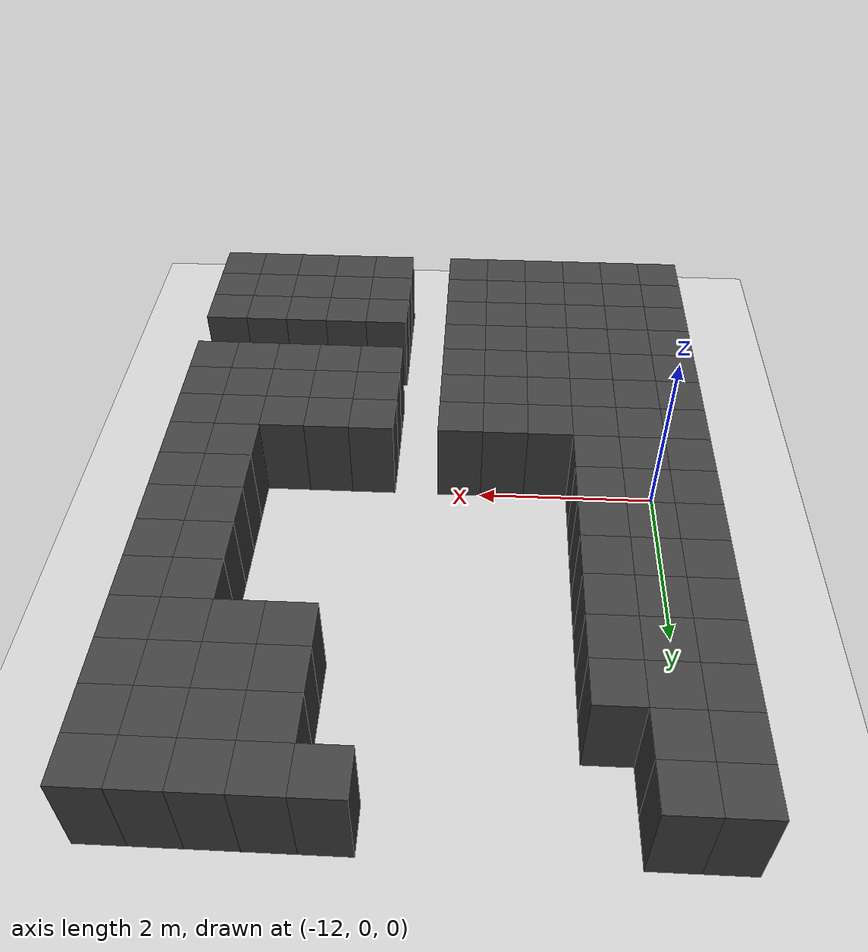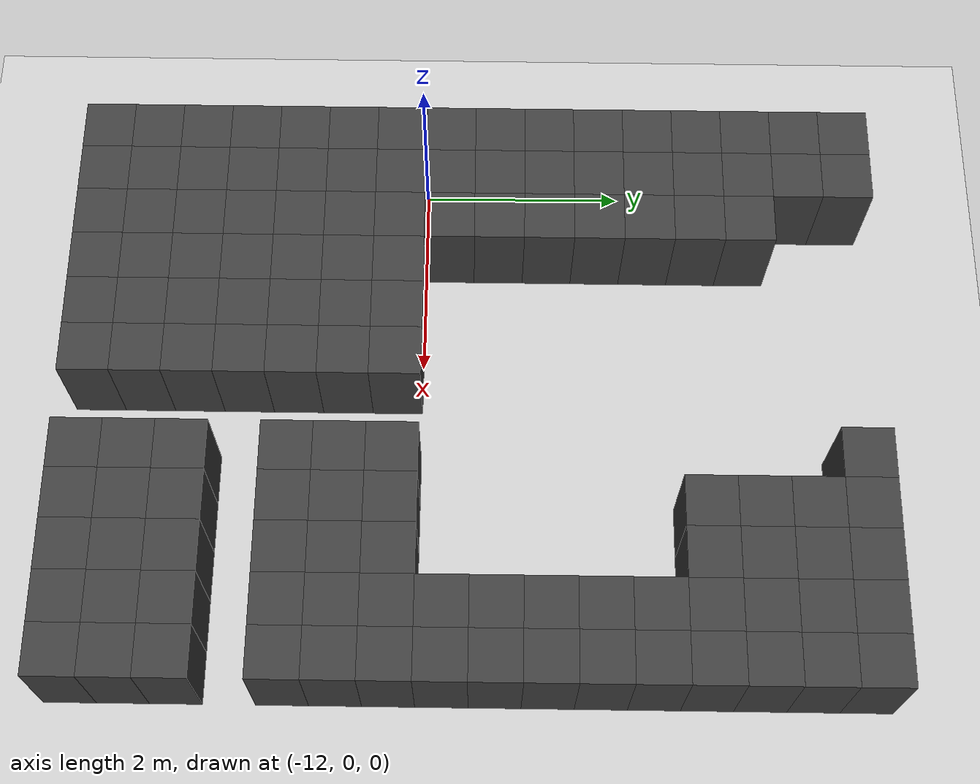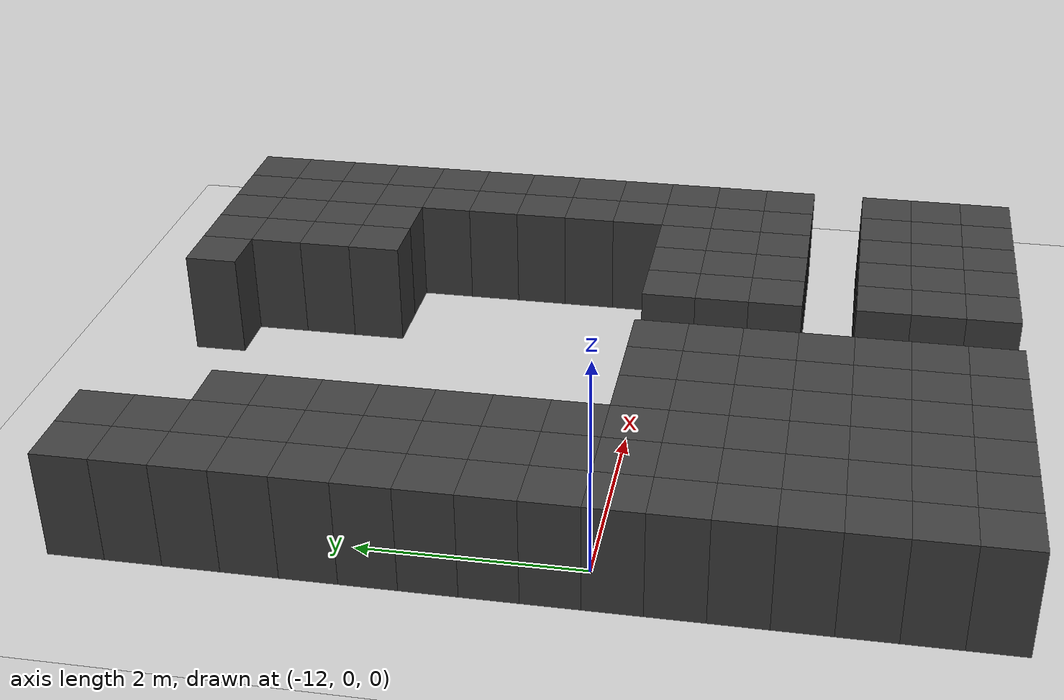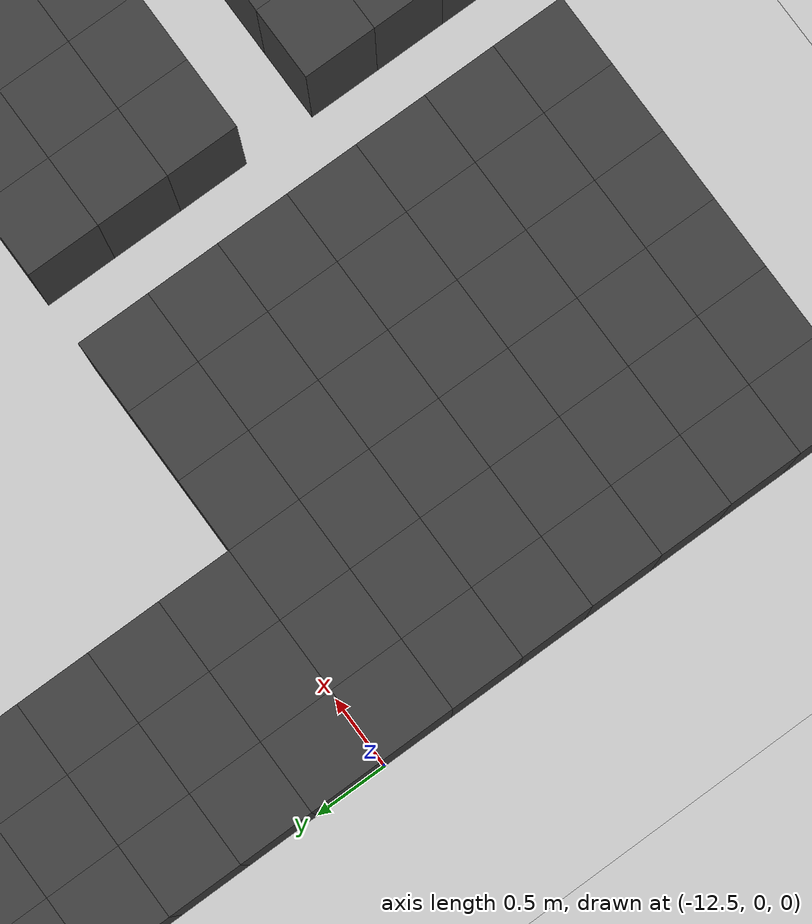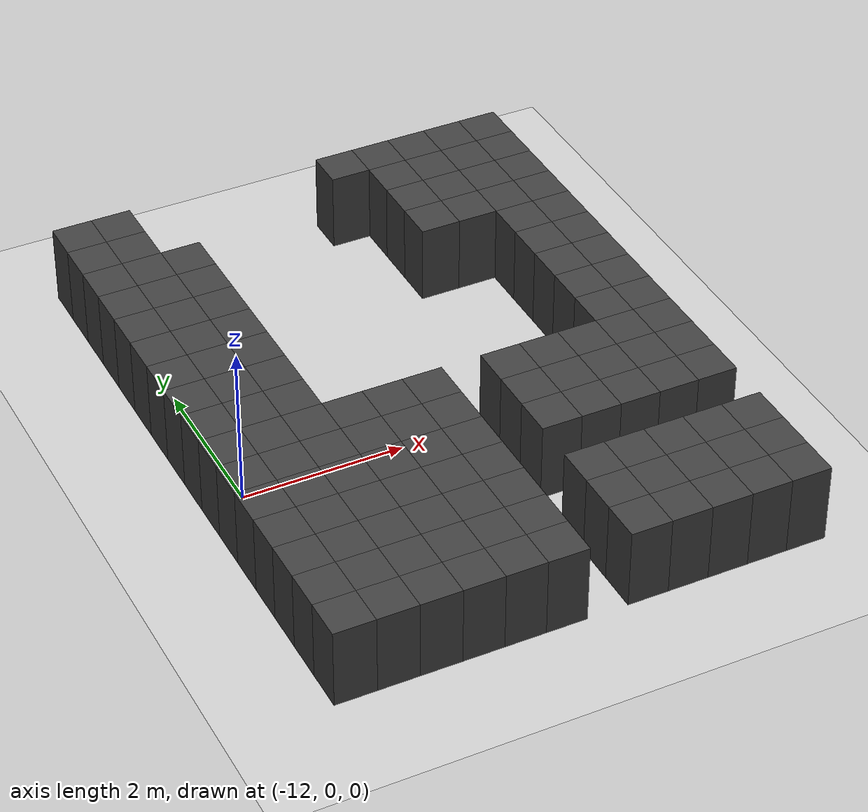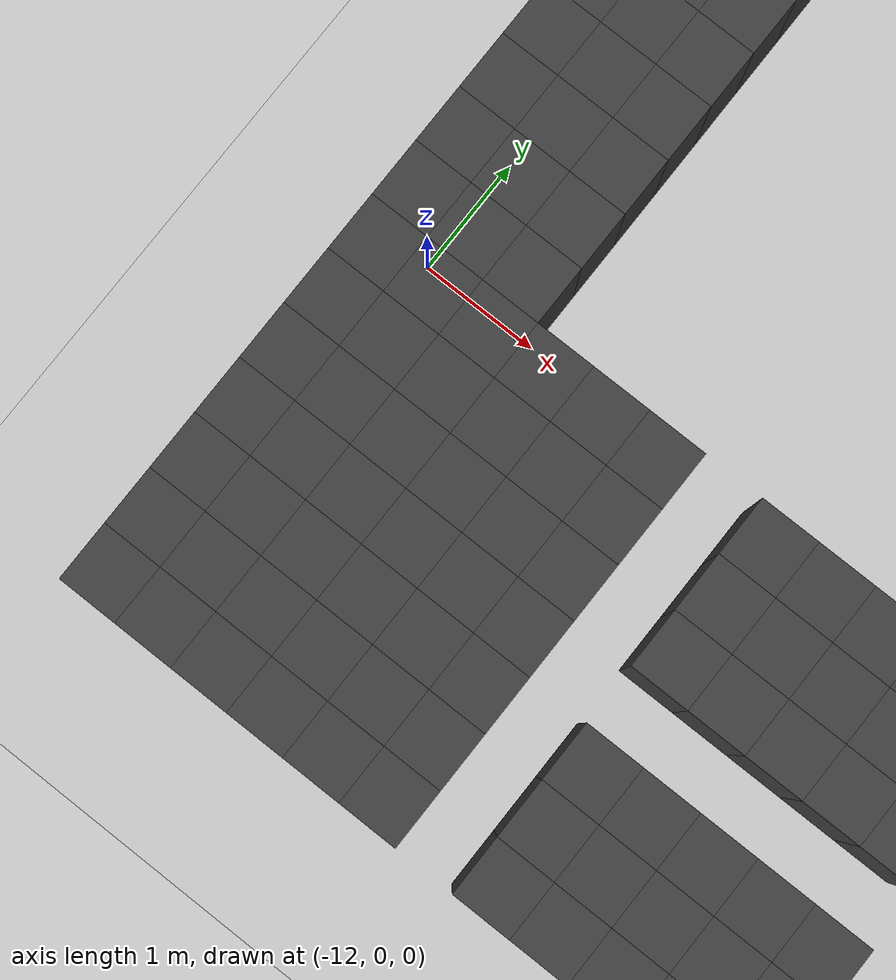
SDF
<sdf version="1.7">
 <world name="map_13820">
  <model name="ground_plane">
   <static>true</static>
   <link name="link">
    <collision name="collision">
     <geometry><plane><normal>0 0 1</normal><size>200 200</size></plane></geometry>
    </collision>
    <visual name="visual">
     <geometry><plane><normal>0 0 1</normal><size>200 200</size></plane></geometry>
     <material><ambient>0.8 0.8 0.8 1</ambient><diffuse>0.8 0.8 0.8 1</diffuse></material>
    </visual>
   </link>
  </model>
  <model name="maze_environment">
   <static>true</static>
   <link name="wall_519">
    <pose>-12.250 4.250 0.500 0 0 0</pose>
    <collision name="col"><geometry><box><size>0.5 0.5 1.0</size></box></geometry></collision>
    <visual name="vis">
     <geometry><box><size>0.5 0.5 1.0</size></box></geometry>
     <material><ambient>0.15 0.15 0.15 1</ambient><diffuse>0.25 0.25 0.25 1</diffuse></material>
    </visual>
   </link>
   <link name="wall_520">
    <pose>-11.750 4.250 0.500 0 0 0</pose>
    <collision name="col"><geometry><box><size>0.5 0.5 1.0</size></box></geometry></collision>
    <visual name="vis">
     <geometry><box><size>0.5 0.5 1.0</size></box></geometry>
     <material><ambient>0.15 0.15 0.15 1</ambient><diffuse>0.25 0.25 0.25 1</diffuse></material>
    </visual>
   </link>
   <link name="wall_521">
    <pose>-8.750 4.250 0.500 0 0 0</pose>
    <collision name="col"><geometry><box><size>0.5 0.5 1.0</size></box></geometry></collision>
    <visual name="vis">
     <geometry><box><size>0.5 0.5 1.0</size></box></geometry>
     <material><ambient>0.15 0.15 0.15 1</ambient><diffuse>0.25 0.25 0.25 1</diffuse></material>
    </visual>
   </link>
   <link name="wall_522">
    <pose>-8.250 4.250 0.500 0 0 0</pose>
    <collision name="col"><geometry><box><size>0.5 0.5 1.0</size></box></geometry></collision>
    <visual name="vis">
     <geometry><box><size>0.5 0.5 1.0</size></box></geometry>
     <material><ambient>0.15 0.15 0.15 1</ambient><diffuse>0.25 0.25 0.25 1</diffuse></material>
    </visual>
   </link>
   <link name="wall_523">
    <pose>-7.750 4.250 0.500 0 0 0</pose>
    <collision name="col"><geometry><box><size>0.5 0.5 1.0</size></box></geometry></collision>
    <visual name="vis">
     <geometry><box><size>0.5 0.5 1.0</size></box></geometry>
     <material><ambient>0.15 0.15 0.15 1</ambient><diffuse>0.25 0.25 0.25 1</diffuse></material>
    </visual>
   </link>
   <link name="wall_524">
    <pose>-7.250 4.250 0.500 0 0 0</pose>
    <collision name="col"><geometry><box><size>0.5 0.5 1.0</size></box></geometry></collision>
    <visual name="vis">
     <geometry><box><size>0.5 0.5 1.0</size></box></geometry>
     <material><ambient>0.15 0.15 0.15 1</ambient><diffuse>0.25 0.25 0.25 1</diffuse></material>
    </visual>
   </link>
   <link name="wall_525">
    <pose>-6.750 4.250 0.500 0 0 0</pose>
    <collision name="col"><geometry><box><size>0.5 0.5 1.0</size></box></geometry></collision>
    <visual name="vis">
     <geometry><box><size>0.5 0.5 1.0</size></box></geometry>
     <material><ambient>0.15 0.15 0.15 1</ambient><diffuse>0.25 0.25 0.25 1</diffuse></material>
    </visual>
   </link>
   <link name="wall_553">
    <pose>-12.250 3.750 0.500 0 0 0</pose>
    <collision name="col"><geometry><box><size>0.5 0.5 1.0</size></box></geometry></collision>
    <visual name="vis">
     <geometry><box><size>0.5 0.5 1.0</size></box></geometry>
     <material><ambient>0.15 0.15 0.15 1</ambient><diffuse>0.25 0.25 0.25 1</diffuse></material>
    </visual>
   </link>
   <link name="wall_554">
    <pose>-11.750 3.750 0.500 0 0 0</pose>
    <collision name="col"><geometry><box><size>0.5 0.5 1.0</size></box></geometry></collision>
    <visual name="vis">
     <geometry><box><size>0.5 0.5 1.0</size></box></geometry>
     <material><ambient>0.15 0.15 0.15 1</ambient><diffuse>0.25 0.25 0.25 1</diffuse></material>
    </visual>
   </link>
   <link name="wall_555">
    <pose>-8.250 3.750 0.500 0 0 0</pose>
    <collision name="col"><geometry><box><size>0.5 0.5 1.0</size></box></geometry></collision>
    <visual name="vis">
     <geometry><box><size>0.5 0.5 1.0</size></box></geometry>
     <material><ambient>0.15 0.15 0.15 1</ambient><diffuse>0.25 0.25 0.25 1</diffuse></material>
    </visual>
   </link>
   <link name="wall_556">
    <pose>-7.750 3.750 0.500 0 0 0</pose>
    <collision name="col"><geometry><box><size>0.5 0.5 1.0</size></box></geometry></collision>
    <visual name="vis">
     <geometry><box><size>0.5 0.5 1.0</size></box></geometry>
     <material><ambient>0.15 0.15 0.15 1</ambient><diffuse>0.25 0.25 0.25 1</diffuse></material>
    </visual>
   </link>
   <link name="wall_557">
    <pose>-7.250 3.750 0.500 0 0 0</pose>
    <collision name="col"><geometry><box><size>0.5 0.5 1.0</size></box></geometry></collision>
    <visual name="vis">
     <geometry><box><size>0.5 0.5 1.0</size></box></geometry>
     <material><ambient>0.15 0.15 0.15 1</ambient><diffuse>0.25 0.25 0.25 1</diffuse></material>
    </visual>
   </link>
   <link name="wall_558">
    <pose>-6.750 3.750 0.500 0 0 0</pose>
    <collision name="col"><geometry><box><size>0.5 0.5 1.0</size></box></geometry></collision>
    <visual name="vis">
     <geometry><box><size>0.5 0.5 1.0</size></box></geometry>
     <material><ambient>0.15 0.15 0.15 1</ambient><diffuse>0.25 0.25 0.25 1</diffuse></material>
    </visual>
   </link>
   <link name="wall_589">
    <pose>-12.250 3.250 0.500 0 0 0</pose>
    <collision name="col"><geometry><box><size>0.5 0.5 1.0</size></box></geometry></collision>
    <visual name="vis">
     <geometry><box><size>0.5 0.5 1.0</size></box></geometry>
     <material><ambient>0.15 0.15 0.15 1</ambient><diffuse>0.25 0.25 0.25 1</diffuse></material>
    </visual>
   </link>
   <link name="wall_590">
    <pose>-11.750 3.250 0.500 0 0 0</pose>
    <collision name="col"><geometry><box><size>0.5 0.5 1.0</size></box></geometry></collision>
    <visual name="vis">
     <geometry><box><size>0.5 0.5 1.0</size></box></geometry>
     <material><ambient>0.15 0.15 0.15 1</ambient><diffuse>0.25 0.25 0.25 1</diffuse></material>
    </visual>
   </link>
   <link name="wall_591">
    <pose>-11.250 3.250 0.500 0 0 0</pose>
    <collision name="col"><geometry><box><size>0.5 0.5 1.0</size></box></geometry></collision>
    <visual name="vis">
     <geometry><box><size>0.5 0.5 1.0</size></box></geometry>
     <material><ambient>0.15 0.15 0.15 1</ambient><diffuse>0.25 0.25 0.25 1</diffuse></material>
    </visual>
   </link>
   <link name="wall_592">
    <pose>-8.250 3.250 0.500 0 0 0</pose>
    <collision name="col"><geometry><box><size>0.5 0.5 1.0</size></box></geometry></collision>
    <visual name="vis">
     <geometry><box><size>0.5 0.5 1.0</size></box></geometry>
     <material><ambient>0.15 0.15 0.15 1</ambient><diffuse>0.25 0.25 0.25 1</diffuse></material>
    </visual>
   </link>
   <link name="wall_593">
    <pose>-7.750 3.250 0.500 0 0 0</pose>
    <collision name="col"><geometry><box><size>0.5 0.5 1.0</size></box></geometry></collision>
    <visual name="vis">
     <geometry><box><size>0.5 0.5 1.0</size></box></geometry>
     <material><ambient>0.15 0.15 0.15 1</ambient><diffuse>0.25 0.25 0.25 1</diffuse></material>
    </visual>
   </link>
   <link name="wall_594">
    <pose>-7.250 3.250 0.500 0 0 0</pose>
    <collision name="col"><geometry><box><size>0.5 0.5 1.0</size></box></geometry></collision>
    <visual name="vis">
     <geometry><box><size>0.5 0.5 1.0</size></box></geometry>
     <material><ambient>0.15 0.15 0.15 1</ambient><diffuse>0.25 0.25 0.25 1</diffuse></material>
    </visual>
   </link>
   <link name="wall_595">
    <pose>-6.750 3.250 0.500 0 0 0</pose>
    <collision name="col"><geometry><box><size>0.5 0.5 1.0</size></box></geometry></collision>
    <visual name="vis">
     <geometry><box><size>0.5 0.5 1.0</size></box></geometry>
     <material><ambient>0.15 0.15 0.15 1</ambient><diffuse>0.25 0.25 0.25 1</diffuse></material>
    </visual>
   </link>
   <link name="wall_626">
    <pose>-12.250 2.750 0.500 0 0 0</pose>
    <collision name="col"><geometry><box><size>0.5 0.5 1.0</size></box></geometry></collision>
    <visual name="vis">
     <geometry><box><size>0.5 0.5 1.0</size></box></geometry>
     <material><ambient>0.15 0.15 0.15 1</ambient><diffuse>0.25 0.25 0.25 1</diffuse></material>
    </visual>
   </link>
   <link name="wall_627">
    <pose>-11.750 2.750 0.500 0 0 0</pose>
    <collision name="col"><geometry><box><size>0.5 0.5 1.0</size></box></geometry></collision>
    <visual name="vis">
     <geometry><box><size>0.5 0.5 1.0</size></box></geometry>
     <material><ambient>0.15 0.15 0.15 1</ambient><diffuse>0.25 0.25 0.25 1</diffuse></material>
    </visual>
   </link>
   <link name="wall_628">
    <pose>-11.250 2.750 0.500 0 0 0</pose>
    <collision name="col"><geometry><box><size>0.5 0.5 1.0</size></box></geometry></collision>
    <visual name="vis">
     <geometry><box><size>0.5 0.5 1.0</size></box></geometry>
     <material><ambient>0.15 0.15 0.15 1</ambient><diffuse>0.25 0.25 0.25 1</diffuse></material>
    </visual>
   </link>
   <link name="wall_629">
    <pose>-8.250 2.750 0.500 0 0 0</pose>
    <collision name="col"><geometry><box><size>0.5 0.5 1.0</size></box></geometry></collision>
    <visual name="vis">
     <geometry><box><size>0.5 0.5 1.0</size></box></geometry>
     <material><ambient>0.15 0.15 0.15 1</ambient><diffuse>0.25 0.25 0.25 1</diffuse></material>
    </visual>
   </link>
   <link name="wall_630">
    <pose>-7.750 2.750 0.500 0 0 0</pose>
    <collision name="col"><geometry><box><size>0.5 0.5 1.0</size></box></geometry></collision>
    <visual name="vis">
     <geometry><box><size>0.5 0.5 1.0</size></box></geometry>
     <material><ambient>0.15 0.15 0.15 1</ambient><diffuse>0.25 0.25 0.25 1</diffuse></material>
    </visual>
   </link>
   <link name="wall_631">
    <pose>-7.250 2.750 0.500 0 0 0</pose>
    <collision name="col"><geometry><box><size>0.5 0.5 1.0</size></box></geometry></collision>
    <visual name="vis">
     <geometry><box><size>0.5 0.5 1.0</size></box></geometry>
     <material><ambient>0.15 0.15 0.15 1</ambient><diffuse>0.25 0.25 0.25 1</diffuse></material>
    </visual>
   </link>
   <link name="wall_632">
    <pose>-6.750 2.750 0.500 0 0 0</pose>
    <collision name="col"><geometry><box><size>0.5 0.5 1.0</size></box></geometry></collision>
    <visual name="vis">
     <geometry><box><size>0.5 0.5 1.0</size></box></geometry>
     <material><ambient>0.15 0.15 0.15 1</ambient><diffuse>0.25 0.25 0.25 1</diffuse></material>
    </visual>
   </link>
   <link name="wall_670">
    <pose>-12.250 2.250 0.500 0 0 0</pose>
    <collision name="col"><geometry><box><size>0.5 0.5 1.0</size></box></geometry></collision>
    <visual name="vis">
     <geometry><box><size>0.5 0.5 1.0</size></box></geometry>
     <material><ambient>0.15 0.15 0.15 1</ambient><diffuse>0.25 0.25 0.25 1</diffuse></material>
    </visual>
   </link>
   <link name="wall_671">
    <pose>-11.750 2.250 0.500 0 0 0</pose>
    <collision name="col"><geometry><box><size>0.5 0.5 1.0</size></box></geometry></collision>
    <visual name="vis">
     <geometry><box><size>0.5 0.5 1.0</size></box></geometry>
     <material><ambient>0.15 0.15 0.15 1</ambient><diffuse>0.25 0.25 0.25 1</diffuse></material>
    </visual>
   </link>
   <link name="wall_672">
    <pose>-11.250 2.250 0.500 0 0 0</pose>
    <collision name="col"><geometry><box><size>0.5 0.5 1.0</size></box></geometry></collision>
    <visual name="vis">
     <geometry><box><size>0.5 0.5 1.0</size></box></geometry>
     <material><ambient>0.15 0.15 0.15 1</ambient><diffuse>0.25 0.25 0.25 1</diffuse></material>
    </visual>
   </link>
   <link name="wall_673">
    <pose>-7.250 2.250 0.500 0 0 0</pose>
    <collision name="col"><geometry><box><size>0.5 0.5 1.0</size></box></geometry></collision>
    <visual name="vis">
     <geometry><box><size>0.5 0.5 1.0</size></box></geometry>
     <material><ambient>0.15 0.15 0.15 1</ambient><diffuse>0.25 0.25 0.25 1</diffuse></material>
    </visual>
   </link>
   <link name="wall_674">
    <pose>-6.750 2.250 0.500 0 0 0</pose>
    <collision name="col"><geometry><box><size>0.5 0.5 1.0</size></box></geometry></collision>
    <visual name="vis">
     <geometry><box><size>0.5 0.5 1.0</size></box></geometry>
     <material><ambient>0.15 0.15 0.15 1</ambient><diffuse>0.25 0.25 0.25 1</diffuse></material>
    </visual>
   </link>
   <link name="wall_712">
    <pose>-12.250 1.750 0.500 0 0 0</pose>
    <collision name="col"><geometry><box><size>0.5 0.5 1.0</size></box></geometry></collision>
    <visual name="vis">
     <geometry><box><size>0.5 0.5 1.0</size></box></geometry>
     <material><ambient>0.15 0.15 0.15 1</ambient><diffuse>0.25 0.25 0.25 1</diffuse></material>
    </visual>
   </link>
   <link name="wall_713">
    <pose>-11.750 1.750 0.500 0 0 0</pose>
    <collision name="col"><geometry><box><size>0.5 0.5 1.0</size></box></geometry></collision>
    <visual name="vis">
     <geometry><box><size>0.5 0.5 1.0</size></box></geometry>
     <material><ambient>0.15 0.15 0.15 1</ambient><diffuse>0.25 0.25 0.25 1</diffuse></material>
    </visual>
   </link>
   <link name="wall_714">
    <pose>-11.250 1.750 0.500 0 0 0</pose>
    <collision name="col"><geometry><box><size>0.5 0.5 1.0</size></box></geometry></collision>
    <visual name="vis">
     <geometry><box><size>0.5 0.5 1.0</size></box></geometry>
     <material><ambient>0.15 0.15 0.15 1</ambient><diffuse>0.25 0.25 0.25 1</diffuse></material>
    </visual>
   </link>
   <link name="wall_715">
    <pose>-7.250 1.750 0.500 0 0 0</pose>
    <collision name="col"><geometry><box><size>0.5 0.5 1.0</size></box></geometry></collision>
    <visual name="vis">
     <geometry><box><size>0.5 0.5 1.0</size></box></geometry>
     <material><ambient>0.15 0.15 0.15 1</ambient><diffuse>0.25 0.25 0.25 1</diffuse></material>
    </visual>
   </link>
   <link name="wall_716">
    <pose>-6.750 1.750 0.500 0 0 0</pose>
    <collision name="col"><geometry><box><size>0.5 0.5 1.0</size></box></geometry></collision>
    <visual name="vis">
     <geometry><box><size>0.5 0.5 1.0</size></box></geometry>
     <material><ambient>0.15 0.15 0.15 1</ambient><diffuse>0.25 0.25 0.25 1</diffuse></material>
    </visual>
   </link>
   <link name="wall_754">
    <pose>-12.250 1.250 0.500 0 0 0</pose>
    <collision name="col"><geometry><box><size>0.5 0.5 1.0</size></box></geometry></collision>
    <visual name="vis">
     <geometry><box><size>0.5 0.5 1.0</size></box></geometry>
     <material><ambient>0.15 0.15 0.15 1</ambient><diffuse>0.25 0.25 0.25 1</diffuse></material>
    </visual>
   </link>
   <link name="wall_755">
    <pose>-11.750 1.250 0.500 0 0 0</pose>
    <collision name="col"><geometry><box><size>0.5 0.5 1.0</size></box></geometry></collision>
    <visual name="vis">
     <geometry><box><size>0.5 0.5 1.0</size></box></geometry>
     <material><ambient>0.15 0.15 0.15 1</ambient><diffuse>0.25 0.25 0.25 1</diffuse></material>
    </visual>
   </link>
   <link name="wall_756">
    <pose>-11.250 1.250 0.500 0 0 0</pose>
    <collision name="col"><geometry><box><size>0.5 0.5 1.0</size></box></geometry></collision>
    <visual name="vis">
     <geometry><box><size>0.5 0.5 1.0</size></box></geometry>
     <material><ambient>0.15 0.15 0.15 1</ambient><diffuse>0.25 0.25 0.25 1</diffuse></material>
    </visual>
   </link>
   <link name="wall_757">
    <pose>-7.250 1.250 0.500 0 0 0</pose>
    <collision name="col"><geometry><box><size>0.5 0.5 1.0</size></box></geometry></collision>
    <visual name="vis">
     <geometry><box><size>0.5 0.5 1.0</size></box></geometry>
     <material><ambient>0.15 0.15 0.15 1</ambient><diffuse>0.25 0.25 0.25 1</diffuse></material>
    </visual>
   </link>
   <link name="wall_758">
    <pose>-6.750 1.250 0.500 0 0 0</pose>
    <collision name="col"><geometry><box><size>0.5 0.5 1.0</size></box></geometry></collision>
    <visual name="vis">
     <geometry><box><size>0.5 0.5 1.0</size></box></geometry>
     <material><ambient>0.15 0.15 0.15 1</ambient><diffuse>0.25 0.25 0.25 1</diffuse></material>
    </visual>
   </link>
   <link name="wall_796">
    <pose>-12.250 0.750 0.500 0 0 0</pose>
    <collision name="col"><geometry><box><size>0.5 0.5 1.0</size></box></geometry></collision>
    <visual name="vis">
     <geometry><box><size>0.5 0.5 1.0</size></box></geometry>
     <material><ambient>0.15 0.15 0.15 1</ambient><diffuse>0.25 0.25 0.25 1</diffuse></material>
    </visual>
   </link>
   <link name="wall_797">
    <pose>-11.750 0.750 0.500 0 0 0</pose>
    <collision name="col"><geometry><box><size>0.5 0.5 1.0</size></box></geometry></collision>
    <visual name="vis">
     <geometry><box><size>0.5 0.5 1.0</size></box></geometry>
     <material><ambient>0.15 0.15 0.15 1</ambient><diffuse>0.25 0.25 0.25 1</diffuse></material>
    </visual>
   </link>
   <link name="wall_798">
    <pose>-11.250 0.750 0.500 0 0 0</pose>
    <collision name="col"><geometry><box><size>0.5 0.5 1.0</size></box></geometry></collision>
    <visual name="vis">
     <geometry><box><size>0.5 0.5 1.0</size></box></geometry>
     <material><ambient>0.15 0.15 0.15 1</ambient><diffuse>0.25 0.25 0.25 1</diffuse></material>
    </visual>
   </link>
   <link name="wall_799">
    <pose>-7.250 0.750 0.500 0 0 0</pose>
    <collision name="col"><geometry><box><size>0.5 0.5 1.0</size></box></geometry></collision>
    <visual name="vis">
     <geometry><box><size>0.5 0.5 1.0</size></box></geometry>
     <material><ambient>0.15 0.15 0.15 1</ambient><diffuse>0.25 0.25 0.25 1</diffuse></material>
    </visual>
   </link>
   <link name="wall_800">
    <pose>-6.750 0.750 0.500 0 0 0</pose>
    <collision name="col"><geometry><box><size>0.5 0.5 1.0</size></box></geometry></collision>
    <visual name="vis">
     <geometry><box><size>0.5 0.5 1.0</size></box></geometry>
     <material><ambient>0.15 0.15 0.15 1</ambient><diffuse>0.25 0.25 0.25 1</diffuse></material>
    </visual>
   </link>
   <link name="wall_838">
    <pose>-12.250 0.250 0.500 0 0 0</pose>
    <collision name="col"><geometry><box><size>0.5 0.5 1.0</size></box></geometry></collision>
    <visual name="vis">
     <geometry><box><size>0.5 0.5 1.0</size></box></geometry>
     <material><ambient>0.15 0.15 0.15 1</ambient><diffuse>0.25 0.25 0.25 1</diffuse></material>
    </visual>
   </link>
   <link name="wall_839">
    <pose>-11.750 0.250 0.500 0 0 0</pose>
    <collision name="col"><geometry><box><size>0.5 0.5 1.0</size></box></geometry></collision>
    <visual name="vis">
     <geometry><box><size>0.5 0.5 1.0</size></box></geometry>
     <material><ambient>0.15 0.15 0.15 1</ambient><diffuse>0.25 0.25 0.25 1</diffuse></material>
    </visual>
   </link>
   <link name="wall_840">
    <pose>-11.250 0.250 0.500 0 0 0</pose>
    <collision name="col"><geometry><box><size>0.5 0.5 1.0</size></box></geometry></collision>
    <visual name="vis">
     <geometry><box><size>0.5 0.5 1.0</size></box></geometry>
     <material><ambient>0.15 0.15 0.15 1</ambient><diffuse>0.25 0.25 0.25 1</diffuse></material>
    </visual>
   </link>
   <link name="wall_841">
    <pose>-7.250 0.250 0.500 0 0 0</pose>
    <collision name="col"><geometry><box><size>0.5 0.5 1.0</size></box></geometry></collision>
    <visual name="vis">
     <geometry><box><size>0.5 0.5 1.0</size></box></geometry>
     <material><ambient>0.15 0.15 0.15 1</ambient><diffuse>0.25 0.25 0.25 1</diffuse></material>
    </visual>
   </link>
   <link name="wall_842">
    <pose>-6.750 0.250 0.500 0 0 0</pose>
    <collision name="col"><geometry><box><size>0.5 0.5 1.0</size></box></geometry></collision>
    <visual name="vis">
     <geometry><box><size>0.5 0.5 1.0</size></box></geometry>
     <material><ambient>0.15 0.15 0.15 1</ambient><diffuse>0.25 0.25 0.25 1</diffuse></material>
    </visual>
   </link>
   <link name="wall_880">
    <pose>-12.250 -0.250 0.500 0 0 0</pose>
    <collision name="col"><geometry><box><size>0.5 0.5 1.0</size></box></geometry></collision>
    <visual name="vis">
     <geometry><box><size>0.5 0.5 1.0</size></box></geometry>
     <material><ambient>0.15 0.15 0.15 1</ambient><diffuse>0.25 0.25 0.25 1</diffuse></material>
    </visual>
   </link>
   <link name="wall_881">
    <pose>-11.750 -0.250 0.500 0 0 0</pose>
    <collision name="col"><geometry><box><size>0.5 0.5 1.0</size></box></geometry></collision>
    <visual name="vis">
     <geometry><box><size>0.5 0.5 1.0</size></box></geometry>
     <material><ambient>0.15 0.15 0.15 1</ambient><diffuse>0.25 0.25 0.25 1</diffuse></material>
    </visual>
   </link>
   <link name="wall_882">
    <pose>-11.250 -0.250 0.500 0 0 0</pose>
    <collision name="col"><geometry><box><size>0.5 0.5 1.0</size></box></geometry></collision>
    <visual name="vis">
     <geometry><box><size>0.5 0.5 1.0</size></box></geometry>
     <material><ambient>0.15 0.15 0.15 1</ambient><diffuse>0.25 0.25 0.25 1</diffuse></material>
    </visual>
   </link>
   <link name="wall_883">
    <pose>-10.750 -0.250 0.500 0 0 0</pose>
    <collision name="col"><geometry><box><size>0.5 0.5 1.0</size></box></geometry></collision>
    <visual name="vis">
     <geometry><box><size>0.5 0.5 1.0</size></box></geometry>
     <material><ambient>0.15 0.15 0.15 1</ambient><diffuse>0.25 0.25 0.25 1</diffuse></material>
    </visual>
   </link>
   <link name="wall_884">
    <pose>-10.250 -0.250 0.500 0 0 0</pose>
    <collision name="col"><geometry><box><size>0.5 0.5 1.0</size></box></geometry></collision>
    <visual name="vis">
     <geometry><box><size>0.5 0.5 1.0</size></box></geometry>
     <material><ambient>0.15 0.15 0.15 1</ambient><diffuse>0.25 0.25 0.25 1</diffuse></material>
    </visual>
   </link>
   <link name="wall_885">
    <pose>-9.750 -0.250 0.500 0 0 0</pose>
    <collision name="col"><geometry><box><size>0.5 0.5 1.0</size></box></geometry></collision>
    <visual name="vis">
     <geometry><box><size>0.5 0.5 1.0</size></box></geometry>
     <material><ambient>0.15 0.15 0.15 1</ambient><diffuse>0.25 0.25 0.25 1</diffuse></material>
    </visual>
   </link>
   <link name="wall_886">
    <pose>-8.750 -0.250 0.500 0 0 0</pose>
    <collision name="col"><geometry><box><size>0.5 0.5 1.0</size></box></geometry></collision>
    <visual name="vis">
     <geometry><box><size>0.5 0.5 1.0</size></box></geometry>
     <material><ambient>0.15 0.15 0.15 1</ambient><diffuse>0.25 0.25 0.25 1</diffuse></material>
    </visual>
   </link>
   <link name="wall_887">
    <pose>-8.250 -0.250 0.500 0 0 0</pose>
    <collision name="col"><geometry><box><size>0.5 0.5 1.0</size></box></geometry></collision>
    <visual name="vis">
     <geometry><box><size>0.5 0.5 1.0</size></box></geometry>
     <material><ambient>0.15 0.15 0.15 1</ambient><diffuse>0.25 0.25 0.25 1</diffuse></material>
    </visual>
   </link>
   <link name="wall_888">
    <pose>-7.750 -0.250 0.500 0 0 0</pose>
    <collision name="col"><geometry><box><size>0.5 0.5 1.0</size></box></geometry></collision>
    <visual name="vis">
     <geometry><box><size>0.5 0.5 1.0</size></box></geometry>
     <material><ambient>0.15 0.15 0.15 1</ambient><diffuse>0.25 0.25 0.25 1</diffuse></material>
    </visual>
   </link>
   <link name="wall_889">
    <pose>-7.250 -0.250 0.500 0 0 0</pose>
    <collision name="col"><geometry><box><size>0.5 0.5 1.0</size></box></geometry></collision>
    <visual name="vis">
     <geometry><box><size>0.5 0.5 1.0</size></box></geometry>
     <material><ambient>0.15 0.15 0.15 1</ambient><diffuse>0.25 0.25 0.25 1</diffuse></material>
    </visual>
   </link>
   <link name="wall_890">
    <pose>-6.750 -0.250 0.500 0 0 0</pose>
    <collision name="col"><geometry><box><size>0.5 0.5 1.0</size></box></geometry></collision>
    <visual name="vis">
     <geometry><box><size>0.5 0.5 1.0</size></box></geometry>
     <material><ambient>0.15 0.15 0.15 1</ambient><diffuse>0.25 0.25 0.25 1</diffuse></material>
    </visual>
   </link>
   <link name="wall_920">
    <pose>-12.250 -0.750 0.500 0 0 0</pose>
    <collision name="col"><geometry><box><size>0.5 0.5 1.0</size></box></geometry></collision>
    <visual name="vis">
     <geometry><box><size>0.5 0.5 1.0</size></box></geometry>
     <material><ambient>0.15 0.15 0.15 1</ambient><diffuse>0.25 0.25 0.25 1</diffuse></material>
    </visual>
   </link>
   <link name="wall_921">
    <pose>-11.750 -0.750 0.500 0 0 0</pose>
    <collision name="col"><geometry><box><size>0.5 0.5 1.0</size></box></geometry></collision>
    <visual name="vis">
     <geometry><box><size>0.5 0.5 1.0</size></box></geometry>
     <material><ambient>0.15 0.15 0.15 1</ambient><diffuse>0.25 0.25 0.25 1</diffuse></material>
    </visual>
   </link>
   <link name="wall_922">
    <pose>-11.250 -0.750 0.500 0 0 0</pose>
    <collision name="col"><geometry><box><size>0.5 0.5 1.0</size></box></geometry></collision>
    <visual name="vis">
     <geometry><box><size>0.5 0.5 1.0</size></box></geometry>
     <material><ambient>0.15 0.15 0.15 1</ambient><diffuse>0.25 0.25 0.25 1</diffuse></material>
    </visual>
   </link>
   <link name="wall_923">
    <pose>-10.750 -0.750 0.500 0 0 0</pose>
    <collision name="col"><geometry><box><size>0.5 0.5 1.0</size></box></geometry></collision>
    <visual name="vis">
     <geometry><box><size>0.5 0.5 1.0</size></box></geometry>
     <material><ambient>0.15 0.15 0.15 1</ambient><diffuse>0.25 0.25 0.25 1</diffuse></material>
    </visual>
   </link>
   <link name="wall_924">
    <pose>-10.250 -0.750 0.500 0 0 0</pose>
    <collision name="col"><geometry><box><size>0.5 0.5 1.0</size></box></geometry></collision>
    <visual name="vis">
     <geometry><box><size>0.5 0.5 1.0</size></box></geometry>
     <material><ambient>0.15 0.15 0.15 1</ambient><diffuse>0.25 0.25 0.25 1</diffuse></material>
    </visual>
   </link>
   <link name="wall_925">
    <pose>-9.750 -0.750 0.500 0 0 0</pose>
    <collision name="col"><geometry><box><size>0.5 0.5 1.0</size></box></geometry></collision>
    <visual name="vis">
     <geometry><box><size>0.5 0.5 1.0</size></box></geometry>
     <material><ambient>0.15 0.15 0.15 1</ambient><diffuse>0.25 0.25 0.25 1</diffuse></material>
    </visual>
   </link>
   <link name="wall_926">
    <pose>-8.750 -0.750 0.500 0 0 0</pose>
    <collision name="col"><geometry><box><size>0.5 0.5 1.0</size></box></geometry></collision>
    <visual name="vis">
     <geometry><box><size>0.5 0.5 1.0</size></box></geometry>
     <material><ambient>0.15 0.15 0.15 1</ambient><diffuse>0.25 0.25 0.25 1</diffuse></material>
    </visual>
   </link>
   <link name="wall_927">
    <pose>-8.250 -0.750 0.500 0 0 0</pose>
    <collision name="col"><geometry><box><size>0.5 0.5 1.0</size></box></geometry></collision>
    <visual name="vis">
     <geometry><box><size>0.5 0.5 1.0</size></box></geometry>
     <material><ambient>0.15 0.15 0.15 1</ambient><diffuse>0.25 0.25 0.25 1</diffuse></material>
    </visual>
   </link>
   <link name="wall_928">
    <pose>-7.750 -0.750 0.500 0 0 0</pose>
    <collision name="col"><geometry><box><size>0.5 0.5 1.0</size></box></geometry></collision>
    <visual name="vis">
     <geometry><box><size>0.5 0.5 1.0</size></box></geometry>
     <material><ambient>0.15 0.15 0.15 1</ambient><diffuse>0.25 0.25 0.25 1</diffuse></material>
    </visual>
   </link>
   <link name="wall_929">
    <pose>-7.250 -0.750 0.500 0 0 0</pose>
    <collision name="col"><geometry><box><size>0.5 0.5 1.0</size></box></geometry></collision>
    <visual name="vis">
     <geometry><box><size>0.5 0.5 1.0</size></box></geometry>
     <material><ambient>0.15 0.15 0.15 1</ambient><diffuse>0.25 0.25 0.25 1</diffuse></material>
    </visual>
   </link>
   <link name="wall_930">
    <pose>-6.750 -0.750 0.500 0 0 0</pose>
    <collision name="col"><geometry><box><size>0.5 0.5 1.0</size></box></geometry></collision>
    <visual name="vis">
     <geometry><box><size>0.5 0.5 1.0</size></box></geometry>
     <material><ambient>0.15 0.15 0.15 1</ambient><diffuse>0.25 0.25 0.25 1</diffuse></material>
    </visual>
   </link>
   <link name="wall_953">
    <pose>-12.250 -1.250 0.500 0 0 0</pose>
    <collision name="col"><geometry><box><size>0.5 0.5 1.0</size></box></geometry></collision>
    <visual name="vis">
     <geometry><box><size>0.5 0.5 1.0</size></box></geometry>
     <material><ambient>0.15 0.15 0.15 1</ambient><diffuse>0.25 0.25 0.25 1</diffuse></material>
    </visual>
   </link>
   <link name="wall_954">
    <pose>-11.750 -1.250 0.500 0 0 0</pose>
    <collision name="col"><geometry><box><size>0.5 0.5 1.0</size></box></geometry></collision>
    <visual name="vis">
     <geometry><box><size>0.5 0.5 1.0</size></box></geometry>
     <material><ambient>0.15 0.15 0.15 1</ambient><diffuse>0.25 0.25 0.25 1</diffuse></material>
    </visual>
   </link>
   <link name="wall_955">
    <pose>-11.250 -1.250 0.500 0 0 0</pose>
    <collision name="col"><geometry><box><size>0.5 0.5 1.0</size></box></geometry></collision>
    <visual name="vis">
     <geometry><box><size>0.5 0.5 1.0</size></box></geometry>
     <material><ambient>0.15 0.15 0.15 1</ambient><diffuse>0.25 0.25 0.25 1</diffuse></material>
    </visual>
   </link>
   <link name="wall_956">
    <pose>-10.750 -1.250 0.500 0 0 0</pose>
    <collision name="col"><geometry><box><size>0.5 0.5 1.0</size></box></geometry></collision>
    <visual name="vis">
     <geometry><box><size>0.5 0.5 1.0</size></box></geometry>
     <material><ambient>0.15 0.15 0.15 1</ambient><diffuse>0.25 0.25 0.25 1</diffuse></material>
    </visual>
   </link>
   <link name="wall_957">
    <pose>-10.250 -1.250 0.500 0 0 0</pose>
    <collision name="col"><geometry><box><size>0.5 0.5 1.0</size></box></geometry></collision>
    <visual name="vis">
     <geometry><box><size>0.5 0.5 1.0</size></box></geometry>
     <material><ambient>0.15 0.15 0.15 1</ambient><diffuse>0.25 0.25 0.25 1</diffuse></material>
    </visual>
   </link>
   <link name="wall_958">
    <pose>-9.750 -1.250 0.500 0 0 0</pose>
    <collision name="col"><geometry><box><size>0.5 0.5 1.0</size></box></geometry></collision>
    <visual name="vis">
     <geometry><box><size>0.5 0.5 1.0</size></box></geometry>
     <material><ambient>0.15 0.15 0.15 1</ambient><diffuse>0.25 0.25 0.25 1</diffuse></material>
    </visual>
   </link>
   <link name="wall_959">
    <pose>-8.750 -1.250 0.500 0 0 0</pose>
    <collision name="col"><geometry><box><size>0.5 0.5 1.0</size></box></geometry></collision>
    <visual name="vis">
     <geometry><box><size>0.5 0.5 1.0</size></box></geometry>
     <material><ambient>0.15 0.15 0.15 1</ambient><diffuse>0.25 0.25 0.25 1</diffuse></material>
    </visual>
   </link>
   <link name="wall_960">
    <pose>-8.250 -1.250 0.500 0 0 0</pose>
    <collision name="col"><geometry><box><size>0.5 0.5 1.0</size></box></geometry></collision>
    <visual name="vis">
     <geometry><box><size>0.5 0.5 1.0</size></box></geometry>
     <material><ambient>0.15 0.15 0.15 1</ambient><diffuse>0.25 0.25 0.25 1</diffuse></material>
    </visual>
   </link>
   <link name="wall_961">
    <pose>-7.750 -1.250 0.500 0 0 0</pose>
    <collision name="col"><geometry><box><size>0.5 0.5 1.0</size></box></geometry></collision>
    <visual name="vis">
     <geometry><box><size>0.5 0.5 1.0</size></box></geometry>
     <material><ambient>0.15 0.15 0.15 1</ambient><diffuse>0.25 0.25 0.25 1</diffuse></material>
    </visual>
   </link>
   <link name="wall_962">
    <pose>-7.250 -1.250 0.500 0 0 0</pose>
    <collision name="col"><geometry><box><size>0.5 0.5 1.0</size></box></geometry></collision>
    <visual name="vis">
     <geometry><box><size>0.5 0.5 1.0</size></box></geometry>
     <material><ambient>0.15 0.15 0.15 1</ambient><diffuse>0.25 0.25 0.25 1</diffuse></material>
    </visual>
   </link>
   <link name="wall_963">
    <pose>-6.750 -1.250 0.500 0 0 0</pose>
    <collision name="col"><geometry><box><size>0.5 0.5 1.0</size></box></geometry></collision>
    <visual name="vis">
     <geometry><box><size>0.5 0.5 1.0</size></box></geometry>
     <material><ambient>0.15 0.15 0.15 1</ambient><diffuse>0.25 0.25 0.25 1</diffuse></material>
    </visual>
   </link>
   <link name="wall_986">
    <pose>-12.250 -1.750 0.500 0 0 0</pose>
    <collision name="col"><geometry><box><size>0.5 0.5 1.0</size></box></geometry></collision>
    <visual name="vis">
     <geometry><box><size>0.5 0.5 1.0</size></box></geometry>
     <material><ambient>0.15 0.15 0.15 1</ambient><diffuse>0.25 0.25 0.25 1</diffuse></material>
    </visual>
   </link>
   <link name="wall_987">
    <pose>-11.750 -1.750 0.500 0 0 0</pose>
    <collision name="col"><geometry><box><size>0.5 0.5 1.0</size></box></geometry></collision>
    <visual name="vis">
     <geometry><box><size>0.5 0.5 1.0</size></box></geometry>
     <material><ambient>0.15 0.15 0.15 1</ambient><diffuse>0.25 0.25 0.25 1</diffuse></material>
    </visual>
   </link>
   <link name="wall_988">
    <pose>-11.250 -1.750 0.500 0 0 0</pose>
    <collision name="col"><geometry><box><size>0.5 0.5 1.0</size></box></geometry></collision>
    <visual name="vis">
     <geometry><box><size>0.5 0.5 1.0</size></box></geometry>
     <material><ambient>0.15 0.15 0.15 1</ambient><diffuse>0.25 0.25 0.25 1</diffuse></material>
    </visual>
   </link>
   <link name="wall_989">
    <pose>-10.750 -1.750 0.500 0 0 0</pose>
    <collision name="col"><geometry><box><size>0.5 0.5 1.0</size></box></geometry></collision>
    <visual name="vis">
     <geometry><box><size>0.5 0.5 1.0</size></box></geometry>
     <material><ambient>0.15 0.15 0.15 1</ambient><diffuse>0.25 0.25 0.25 1</diffuse></material>
    </visual>
   </link>
   <link name="wall_990">
    <pose>-10.250 -1.750 0.500 0 0 0</pose>
    <collision name="col"><geometry><box><size>0.5 0.5 1.0</size></box></geometry></collision>
    <visual name="vis">
     <geometry><box><size>0.5 0.5 1.0</size></box></geometry>
     <material><ambient>0.15 0.15 0.15 1</ambient><diffuse>0.25 0.25 0.25 1</diffuse></material>
    </visual>
   </link>
   <link name="wall_991">
    <pose>-9.750 -1.750 0.500 0 0 0</pose>
    <collision name="col"><geometry><box><size>0.5 0.5 1.0</size></box></geometry></collision>
    <visual name="vis">
     <geometry><box><size>0.5 0.5 1.0</size></box></geometry>
     <material><ambient>0.15 0.15 0.15 1</ambient><diffuse>0.25 0.25 0.25 1</diffuse></material>
    </visual>
   </link>
   <link name="wall_1010">
    <pose>-12.250 -2.250 0.500 0 0 0</pose>
    <collision name="col"><geometry><box><size>0.5 0.5 1.0</size></box></geometry></collision>
    <visual name="vis">
     <geometry><box><size>0.5 0.5 1.0</size></box></geometry>
     <material><ambient>0.15 0.15 0.15 1</ambient><diffuse>0.25 0.25 0.25 1</diffuse></material>
    </visual>
   </link>
   <link name="wall_1011">
    <pose>-11.750 -2.250 0.500 0 0 0</pose>
    <collision name="col"><geometry><box><size>0.5 0.5 1.0</size></box></geometry></collision>
    <visual name="vis">
     <geometry><box><size>0.5 0.5 1.0</size></box></geometry>
     <material><ambient>0.15 0.15 0.15 1</ambient><diffuse>0.25 0.25 0.25 1</diffuse></material>
    </visual>
   </link>
   <link name="wall_1012">
    <pose>-11.250 -2.250 0.500 0 0 0</pose>
    <collision name="col"><geometry><box><size>0.5 0.5 1.0</size></box></geometry></collision>
    <visual name="vis">
     <geometry><box><size>0.5 0.5 1.0</size></box></geometry>
     <material><ambient>0.15 0.15 0.15 1</ambient><diffuse>0.25 0.25 0.25 1</diffuse></material>
    </visual>
   </link>
   <link name="wall_1013">
    <pose>-10.750 -2.250 0.500 0 0 0</pose>
    <collision name="col"><geometry><box><size>0.5 0.5 1.0</size></box></geometry></collision>
    <visual name="vis">
     <geometry><box><size>0.5 0.5 1.0</size></box></geometry>
     <material><ambient>0.15 0.15 0.15 1</ambient><diffuse>0.25 0.25 0.25 1</diffuse></material>
    </visual>
   </link>
   <link name="wall_1014">
    <pose>-10.250 -2.250 0.500 0 0 0</pose>
    <collision name="col"><geometry><box><size>0.5 0.5 1.0</size></box></geometry></collision>
    <visual name="vis">
     <geometry><box><size>0.5 0.5 1.0</size></box></geometry>
     <material><ambient>0.15 0.15 0.15 1</ambient><diffuse>0.25 0.25 0.25 1</diffuse></material>
    </visual>
   </link>
   <link name="wall_1015">
    <pose>-9.750 -2.250 0.500 0 0 0</pose>
    <collision name="col"><geometry><box><size>0.5 0.5 1.0</size></box></geometry></collision>
    <visual name="vis">
     <geometry><box><size>0.5 0.5 1.0</size></box></geometry>
     <material><ambient>0.15 0.15 0.15 1</ambient><diffuse>0.25 0.25 0.25 1</diffuse></material>
    </visual>
   </link>
   <link name="wall_1016">
    <pose>-8.750 -2.250 0.500 0 0 0</pose>
    <collision name="col"><geometry><box><size>0.5 0.5 1.0</size></box></geometry></collision>
    <visual name="vis">
     <geometry><box><size>0.5 0.5 1.0</size></box></geometry>
     <material><ambient>0.15 0.15 0.15 1</ambient><diffuse>0.25 0.25 0.25 1</diffuse></material>
    </visual>
   </link>
   <link name="wall_1017">
    <pose>-8.250 -2.250 0.500 0 0 0</pose>
    <collision name="col"><geometry><box><size>0.5 0.5 1.0</size></box></geometry></collision>
    <visual name="vis">
     <geometry><box><size>0.5 0.5 1.0</size></box></geometry>
     <material><ambient>0.15 0.15 0.15 1</ambient><diffuse>0.25 0.25 0.25 1</diffuse></material>
    </visual>
   </link>
   <link name="wall_1018">
    <pose>-7.750 -2.250 0.500 0 0 0</pose>
    <collision name="col"><geometry><box><size>0.5 0.5 1.0</size></box></geometry></collision>
    <visual name="vis">
     <geometry><box><size>0.5 0.5 1.0</size></box></geometry>
     <material><ambient>0.15 0.15 0.15 1</ambient><diffuse>0.25 0.25 0.25 1</diffuse></material>
    </visual>
   </link>
   <link name="wall_1019">
    <pose>-7.250 -2.250 0.500 0 0 0</pose>
    <collision name="col"><geometry><box><size>0.5 0.5 1.0</size></box></geometry></collision>
    <visual name="vis">
     <geometry><box><size>0.5 0.5 1.0</size></box></geometry>
     <material><ambient>0.15 0.15 0.15 1</ambient><diffuse>0.25 0.25 0.25 1</diffuse></material>
    </visual>
   </link>
   <link name="wall_1020">
    <pose>-6.750 -2.250 0.500 0 0 0</pose>
    <collision name="col"><geometry><box><size>0.5 0.5 1.0</size></box></geometry></collision>
    <visual name="vis">
     <geometry><box><size>0.5 0.5 1.0</size></box></geometry>
     <material><ambient>0.15 0.15 0.15 1</ambient><diffuse>0.25 0.25 0.25 1</diffuse></material>
    </visual>
   </link>
   <link name="wall_1041">
    <pose>-12.250 -2.750 0.500 0 0 0</pose>
    <collision name="col"><geometry><box><size>0.5 0.5 1.0</size></box></geometry></collision>
    <visual name="vis">
     <geometry><box><size>0.5 0.5 1.0</size></box></geometry>
     <material><ambient>0.15 0.15 0.15 1</ambient><diffuse>0.25 0.25 0.25 1</diffuse></material>
    </visual>
   </link>
   <link name="wall_1042">
    <pose>-11.750 -2.750 0.500 0 0 0</pose>
    <collision name="col"><geometry><box><size>0.5 0.5 1.0</size></box></geometry></collision>
    <visual name="vis">
     <geometry><box><size>0.5 0.5 1.0</size></box></geometry>
     <material><ambient>0.15 0.15 0.15 1</ambient><diffuse>0.25 0.25 0.25 1</diffuse></material>
    </visual>
   </link>
   <link name="wall_1043">
    <pose>-11.250 -2.750 0.500 0 0 0</pose>
    <collision name="col"><geometry><box><size>0.5 0.5 1.0</size></box></geometry></collision>
    <visual name="vis">
     <geometry><box><size>0.5 0.5 1.0</size></box></geometry>
     <material><ambient>0.15 0.15 0.15 1</ambient><diffuse>0.25 0.25 0.25 1</diffuse></material>
    </visual>
   </link>
   <link name="wall_1044">
    <pose>-10.750 -2.750 0.500 0 0 0</pose>
    <collision name="col"><geometry><box><size>0.5 0.5 1.0</size></box></geometry></collision>
    <visual name="vis">
     <geometry><box><size>0.5 0.5 1.0</size></box></geometry>
     <material><ambient>0.15 0.15 0.15 1</ambient><diffuse>0.25 0.25 0.25 1</diffuse></material>
    </visual>
   </link>
   <link name="wall_1045">
    <pose>-10.250 -2.750 0.500 0 0 0</pose>
    <collision name="col"><geometry><box><size>0.5 0.5 1.0</size></box></geometry></collision>
    <visual name="vis">
     <geometry><box><size>0.5 0.5 1.0</size></box></geometry>
     <material><ambient>0.15 0.15 0.15 1</ambient><diffuse>0.25 0.25 0.25 1</diffuse></material>
    </visual>
   </link>
   <link name="wall_1046">
    <pose>-9.750 -2.750 0.500 0 0 0</pose>
    <collision name="col"><geometry><box><size>0.5 0.5 1.0</size></box></geometry></collision>
    <visual name="vis">
     <geometry><box><size>0.5 0.5 1.0</size></box></geometry>
     <material><ambient>0.15 0.15 0.15 1</ambient><diffuse>0.25 0.25 0.25 1</diffuse></material>
    </visual>
   </link>
   <link name="wall_1047">
    <pose>-8.750 -2.750 0.500 0 0 0</pose>
    <collision name="col"><geometry><box><size>0.5 0.5 1.0</size></box></geometry></collision>
    <visual name="vis">
     <geometry><box><size>0.5 0.5 1.0</size></box></geometry>
     <material><ambient>0.15 0.15 0.15 1</ambient><diffuse>0.25 0.25 0.25 1</diffuse></material>
    </visual>
   </link>
   <link name="wall_1048">
    <pose>-8.250 -2.750 0.500 0 0 0</pose>
    <collision name="col"><geometry><box><size>0.5 0.5 1.0</size></box></geometry></collision>
    <visual name="vis">
     <geometry><box><size>0.5 0.5 1.0</size></box></geometry>
     <material><ambient>0.15 0.15 0.15 1</ambient><diffuse>0.25 0.25 0.25 1</diffuse></material>
    </visual>
   </link>
   <link name="wall_1049">
    <pose>-7.750 -2.750 0.500 0 0 0</pose>
    <collision name="col"><geometry><box><size>0.5 0.5 1.0</size></box></geometry></collision>
    <visual name="vis">
     <geometry><box><size>0.5 0.5 1.0</size></box></geometry>
     <material><ambient>0.15 0.15 0.15 1</ambient><diffuse>0.25 0.25 0.25 1</diffuse></material>
    </visual>
   </link>
   <link name="wall_1050">
    <pose>-7.250 -2.750 0.500 0 0 0</pose>
    <collision name="col"><geometry><box><size>0.5 0.5 1.0</size></box></geometry></collision>
    <visual name="vis">
     <geometry><box><size>0.5 0.5 1.0</size></box></geometry>
     <material><ambient>0.15 0.15 0.15 1</ambient><diffuse>0.25 0.25 0.25 1</diffuse></material>
    </visual>
   </link>
   <link name="wall_1051">
    <pose>-6.750 -2.750 0.500 0 0 0</pose>
    <collision name="col"><geometry><box><size>0.5 0.5 1.0</size></box></geometry></collision>
    <visual name="vis">
     <geometry><box><size>0.5 0.5 1.0</size></box></geometry>
     <material><ambient>0.15 0.15 0.15 1</ambient><diffuse>0.25 0.25 0.25 1</diffuse></material>
    </visual>
   </link>
   <link name="wall_1079">
    <pose>-12.250 -3.250 0.500 0 0 0</pose>
    <collision name="col"><geometry><box><size>0.5 0.5 1.0</size></box></geometry></collision>
    <visual name="vis">
     <geometry><box><size>0.5 0.5 1.0</size></box></geometry>
     <material><ambient>0.15 0.15 0.15 1</ambient><diffuse>0.25 0.25 0.25 1</diffuse></material>
    </visual>
   </link>
   <link name="wall_1080">
    <pose>-11.750 -3.250 0.500 0 0 0</pose>
    <collision name="col"><geometry><box><size>0.5 0.5 1.0</size></box></geometry></collision>
    <visual name="vis">
     <geometry><box><size>0.5 0.5 1.0</size></box></geometry>
     <material><ambient>0.15 0.15 0.15 1</ambient><diffuse>0.25 0.25 0.25 1</diffuse></material>
    </visual>
   </link>
   <link name="wall_1081">
    <pose>-11.250 -3.250 0.500 0 0 0</pose>
    <collision name="col"><geometry><box><size>0.5 0.5 1.0</size></box></geometry></collision>
    <visual name="vis">
     <geometry><box><size>0.5 0.5 1.0</size></box></geometry>
     <material><ambient>0.15 0.15 0.15 1</ambient><diffuse>0.25 0.25 0.25 1</diffuse></material>
    </visual>
   </link>
   <link name="wall_1082">
    <pose>-10.750 -3.250 0.500 0 0 0</pose>
    <collision name="col"><geometry><box><size>0.5 0.5 1.0</size></box></geometry></collision>
    <visual name="vis">
     <geometry><box><size>0.5 0.5 1.0</size></box></geometry>
     <material><ambient>0.15 0.15 0.15 1</ambient><diffuse>0.25 0.25 0.25 1</diffuse></material>
    </visual>
   </link>
   <link name="wall_1083">
    <pose>-10.250 -3.250 0.500 0 0 0</pose>
    <collision name="col"><geometry><box><size>0.5 0.5 1.0</size></box></geometry></collision>
    <visual name="vis">
     <geometry><box><size>0.5 0.5 1.0</size></box></geometry>
     <material><ambient>0.15 0.15 0.15 1</ambient><diffuse>0.25 0.25 0.25 1</diffuse></material>
    </visual>
   </link>
   <link name="wall_1084">
    <pose>-9.750 -3.250 0.500 0 0 0</pose>
    <collision name="col"><geometry><box><size>0.5 0.5 1.0</size></box></geometry></collision>
    <visual name="vis">
     <geometry><box><size>0.5 0.5 1.0</size></box></geometry>
     <material><ambient>0.15 0.15 0.15 1</ambient><diffuse>0.25 0.25 0.25 1</diffuse></material>
    </visual>
   </link>
   <link name="wall_1085">
    <pose>-8.750 -3.250 0.500 0 0 0</pose>
    <collision name="col"><geometry><box><size>0.5 0.5 1.0</size></box></geometry></collision>
    <visual name="vis">
     <geometry><box><size>0.5 0.5 1.0</size></box></geometry>
     <material><ambient>0.15 0.15 0.15 1</ambient><diffuse>0.25 0.25 0.25 1</diffuse></material>
    </visual>
   </link>
   <link name="wall_1086">
    <pose>-8.250 -3.250 0.500 0 0 0</pose>
    <collision name="col"><geometry><box><size>0.5 0.5 1.0</size></box></geometry></collision>
    <visual name="vis">
     <geometry><box><size>0.5 0.5 1.0</size></box></geometry>
     <material><ambient>0.15 0.15 0.15 1</ambient><diffuse>0.25 0.25 0.25 1</diffuse></material>
    </visual>
   </link>
   <link name="wall_1087">
    <pose>-7.750 -3.250 0.500 0 0 0</pose>
    <collision name="col"><geometry><box><size>0.5 0.5 1.0</size></box></geometry></collision>
    <visual name="vis">
     <geometry><box><size>0.5 0.5 1.0</size></box></geometry>
     <material><ambient>0.15 0.15 0.15 1</ambient><diffuse>0.25 0.25 0.25 1</diffuse></material>
    </visual>
   </link>
   <link name="wall_1088">
    <pose>-7.250 -3.250 0.500 0 0 0</pose>
    <collision name="col"><geometry><box><size>0.5 0.5 1.0</size></box></geometry></collision>
    <visual name="vis">
     <geometry><box><size>0.5 0.5 1.0</size></box></geometry>
     <material><ambient>0.15 0.15 0.15 1</ambient><diffuse>0.25 0.25 0.25 1</diffuse></material>
    </visual>
   </link>
   <link name="wall_1089">
    <pose>-6.750 -3.250 0.500 0 0 0</pose>
    <collision name="col"><geometry><box><size>0.5 0.5 1.0</size></box></geometry></collision>
    <visual name="vis">
     <geometry><box><size>0.5 0.5 1.0</size></box></geometry>
     <material><ambient>0.15 0.15 0.15 1</ambient><diffuse>0.25 0.25 0.25 1</diffuse></material>
    </visual>
   </link>
  </model>
 </world>
</sdf>
